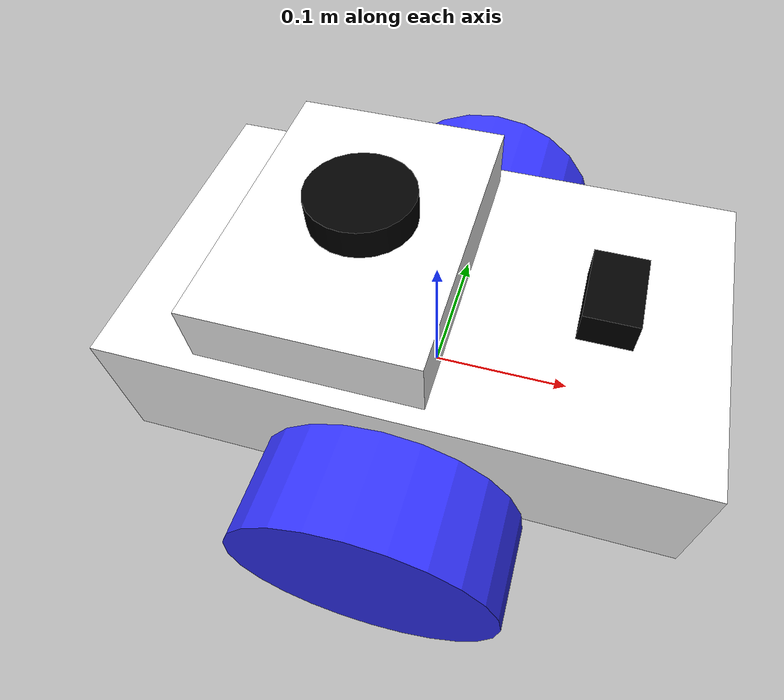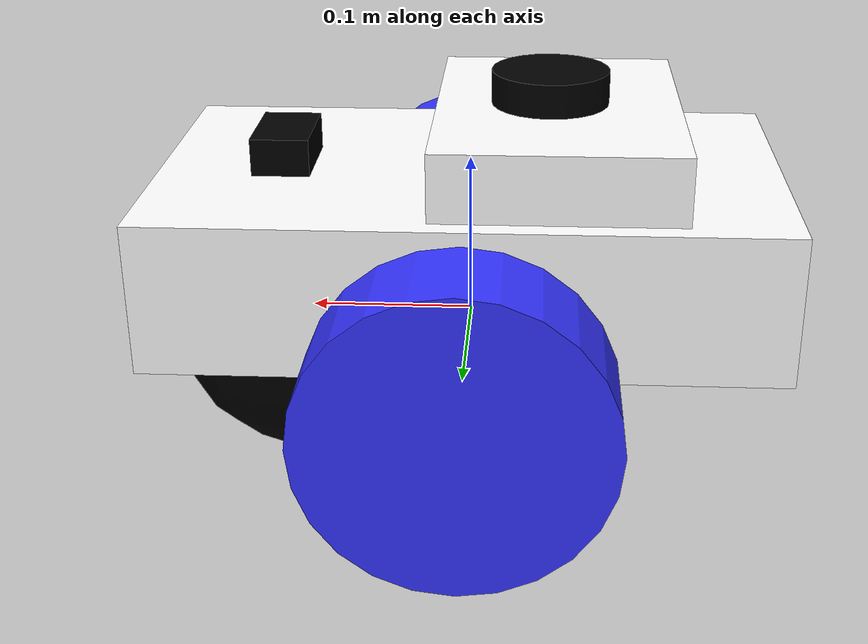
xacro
<?xml version="1.0"?>
<robot xmlns:xacro="http://www.ros.org/wiki/xacro"  name="robot">

    <xacro:arg name="use_ros2_control" default="true"/>
    <xacro:arg name="sim_mode" default="false"/>

    <xacro:include filename="robot_core.xacro"/>

    <xacro:if value="$(arg use_ros2_control)">
        <xacro:include filename="ros2_control.xacro" />
    </xacro:if>
    <xacro:unless value="$(arg use_ros2_control)">
        <xacro:include filename="gazebo_control.xacro" />
    </xacro:unless>

    <xacro:include filename="camera.xacro"/>
    <xacro:include filename="lidar.xacro"/>
</robot>

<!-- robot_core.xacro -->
<robot xmlns:xacro="http://www.ros.org/wiki/xacro">

    <xacro:include filename="inertial_macros.xacro"/>

    <xacro:property name="chassis_l" value="0.375"/>

    <material name="white">
        <color rgba="1 1 1 1"/>
    </material>

    <material name="orange">
        <color rgba="1 0.3 0.1 1"/>
    </material>

    <material name="blue">
        <color rgba="0.2 0.2 1 1"/>
    </material>

    <material name="black">
        <color rgba="0 0 0 1"/>
    </material>

   <material name="red">
        <color rgba="1 0 0 1"/>
    </material>

    <!-- Base Link_-->
    <link name="base_link">
    </link>

    <!-- Base footprint link -->
    <joint name="base_footprint_joint" type="fixed">
        <parent link="base_link" />
        <child link="base_footprint"/>
        <origin xyz="0 0 0" rpy="0 0 0"/>
    </joint>

    <link name="base_footprint">

    </link>

    <!-- Chassis link -->
    <joint name="chassis_joint" type="fixed">
        <parent link="base_link" />
        <child link="chassis"/>
        <origin xyz="-0.1875 0 0.006"/>
    </joint>

    <link name="chassis">
        <visual>
            <origin xyz="0.1875 0 0.045"/>
            <geometry>
                <box size="0.375 .225 .090"/>
            </geometry>
            <material name="white"/>
        </visual>
        <visual>
            <origin xyz="0.135 0 0.110"/>
            <geometry>
                <box size=".145 .200 .040"/>
            </geometry>
            <material name="white"/>
        </visual>
        <collision>
            <origin xyz="0 0 0"/>
            <geometry>
                <box size=".375 .225 .090"/>
            </geometry>
        </collision>
        <xacro:inertial_box mass="0.5" x="0.375" y="0.225" z="0.090">
            <origin xyz="0 0 0" rpy="0 0 0"/>
        </xacro:inertial_box>
    </link>

    <gazebo reference="chassis">
        <material>Gazebo/White</material>
    </gazebo>

<!-- Left Wheel Link_-->
    <joint name="left_wheel_joint" type="continuous">
        <parent link="base_link" />
        <child link="left_wheel"/>
        <origin xyz="0 0.150 0" rpy="-${pi/2} 0 0"/>
        <axis xyz="0 0 1"/>
    </joint>

    <link name="left_wheel">
        <visual>
            <geometry>
                <cylinder radius="0.09" length="0.066"/>
            </geometry>
            <material name="blue"/>
       </visual>
        <collision>
            <geometry>
                <cylinder radius="0.09" length="0.066"/>
            </geometry>
       </collision>
        <xacro:inertial_cylinder mass="0.1" length="0.04" radius="0.01">
            <origin xyz="0 0 0" rpy="0 0 0"/>
        </xacro:inertial_cylinder>
    </link>

    <gazebo reference="left_wheel">
        <material>Gazebo/Blue</material>
    </gazebo>

    <!-- Right Wheel Link_-->
    <joint name="right_wheel_joint" type="continuous">
        <parent link="base_link" />
        <child link="right_wheel"/>
        <origin xyz="0 -0.150 0" rpy="${pi/2} 0 0"/>
        <axis xyz="0 0 -1"/>
    </joint>

    <link name="right_wheel">
        <visual>
            <geometry>
                <cylinder radius="0.09" length="0.066"/>
            </geometry>
            <material name="blue"/>
       </visual>
        <collision>
            <geometry>
                <cylinder radius="0.09" length="0.066"/>
            </geometry>
       </collision>
        <xacro:inertial_cylinder mass="0.1" length="0.04" radius="0.01">
            <origin xyz="0 0 0" rpy="0 0 0"/>
        </xacro:inertial_cylinder>
    </link>

    <gazebo reference="right_wheel">
        <material>Gazebo/Blue</material>
    </gazebo>

    <!-- Castor Wheel Link_-->
    <joint name="castor_wheel_joint" type="fixed">
        <parent link="base_link" />
        <child link="castor_wheel"/>
        <origin xyz="0.1 0 -0.0"/>
    </joint>

    <link name="castor_wheel">
        <visual>
            <geometry>
                <sphere radius="0.09"/>
            </geometry>
            <material name="black"/>
       </visual>
        <collision>
            <geometry>
                <sphere radius="0.09"/>
            </geometry>
       </collision>
        <xacro:inertial_sphere mass="0.1" radius="0.09">
            <origin xyz="0 0 0" rpy="0 0 0"/>
        </xacro:inertial_sphere>
    </link>
    <gazebo reference="castor_wheel">
        <material>Gazebo/Black</material>
        <mu1 value="0.001"/>
        <mu2 value="0.001"/>
    </gazebo>

</robot>

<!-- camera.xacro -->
<robot xmlns:xacro="http://www.ros.org/wiki/xacro" >

    <joint name="camera_joint" type="fixed">
        <parent link="chassis"/>
        <child link="camera_link"/>
        <origin xyz="0.300 0 0.090" rpy="0 0 0"/>
    </joint>

    <link name="camera_link">
        <visual>
            <geometry>
                <box size="0.035 0.055 0.045"/>
            </geometry>
            <material name="black"/>
        </visual>
    </link>

    <joint name="camera_optical_joint" type="fixed">
        <parent link="camera_link"/>
        <child link="camera_link_optical"/>
        <origin xyz="0 0 0" rpy="${-pi/2} 0 ${-pi/2}"/>
    </joint>

    <link name="camera_link_optical"></link>

    <gazebo reference="camera_link">
        <material>Gazebo/Black</material>

        <sensor name="camera" type="camera">
            <pose> 0 0 0 0 0 0 </pose>
            <visualize>true</visualize>
            <update_rate>10</update_rate>
            <camera>
                <horizontal_fov>1.089</horizontal_fov>
                <image>
                    <format>R8G8B8</format>
                    <width>640</width>
                    <height>480</height>
                </image>
                <clip>
                    <near>0.05</near>
                    <far>8.0</far>
                </clip>
            </camera>
            <plugin name="camera_controller" filename="libgazebo_ros2_camera.so">
                <frame_name>camera_link_optical</frame_name>
            </plugin>
        </sensor>
    </gazebo>

</robot>

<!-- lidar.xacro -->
<robot xmlns:xacro="http://www.ros.org/wiki/xacro" >

    <joint name="laser_joint" type="fixed">
        <parent link="chassis"/>
        <child link="laser_frame"/>
        <origin xyz="0.140 0 0.130" rpy="0 0 0"/>
    </joint>

    <link name="laser_frame">
        <visual>
            <geometry>
                <cylinder radius="0.035" length="0.04"/>
            </geometry>
            <material name="black"/>
        </visual>
        <collision>
            <geometry>
                <cylinder radius="0.035" length="0.04"/>
            </geometry>
        </collision>
        <xacro:inertial_cylinder mass="0.1" length="0.04" radius="0.035">
            <origin xyz="0 0 0" rpy="0 0 0"/>
        </xacro:inertial_cylinder>
    </link>

    <gazebo reference="laser_frame">
        <material>Gazebo/Red</material>

        <sensor name="laser" type="ray">
            <pose> xyz="0 0 0" rpy="0 0 0" </pose>
            <visualize>false</visualize>
            <update_rate>10</update_rate>
            <ray>
                <scan>
                    <horizontal>
                        <samples>360</samples>
                        <min_angle>-3.14</min_angle>
                        <max_angle>3.14</max_angle>
                    </horizontal>
                </scan>
                <range>
                    <min>0.3</min>
                    <max>12</max>
                </range>
            </ray>
            <plugin name="laser_controller" filename="libgazebo_ros2_ray_sensor.so">
                <ros>
                    <argument>~/out:=scan</argument>
                </ros>
                <output_type>sensor_msgs/LaserScan</output_type>
                <frame_name>laser_frame</frame_name>
            </plugin>
        </sensor>
    </gazebo>

</robot>
